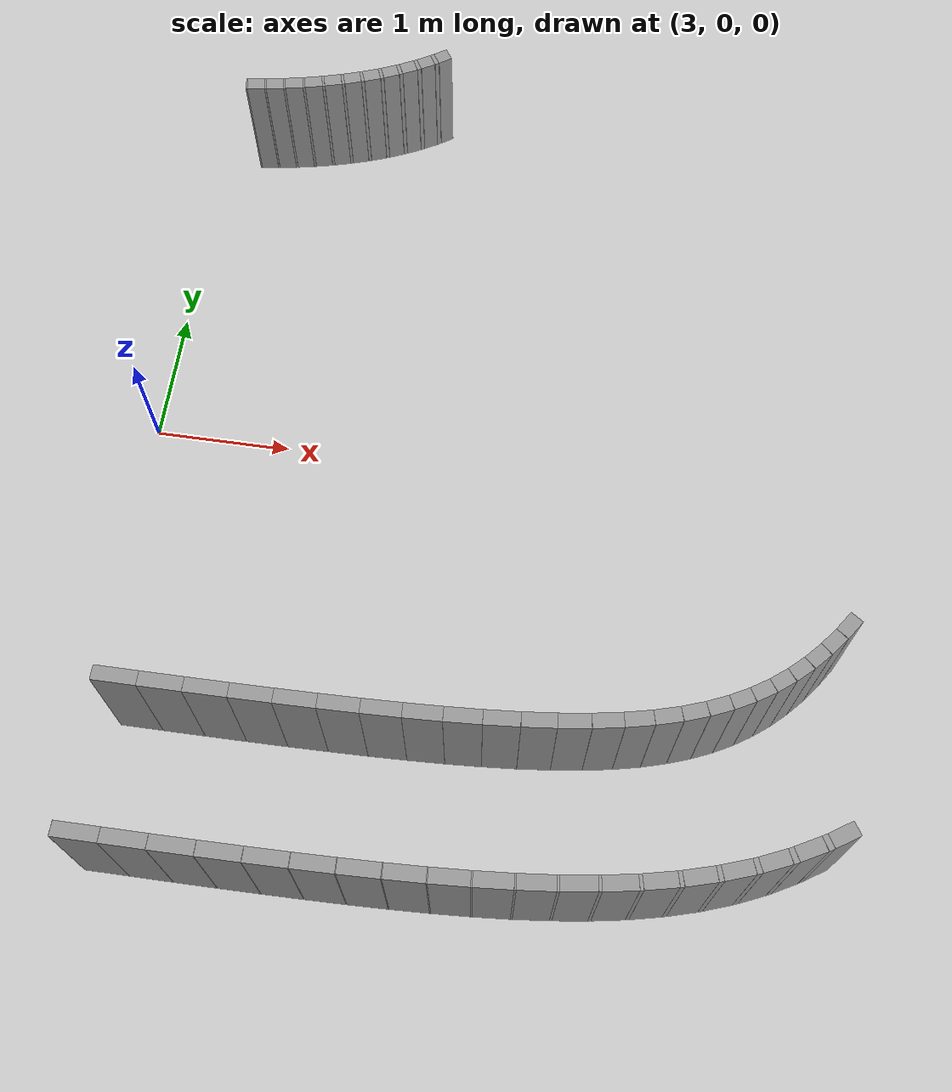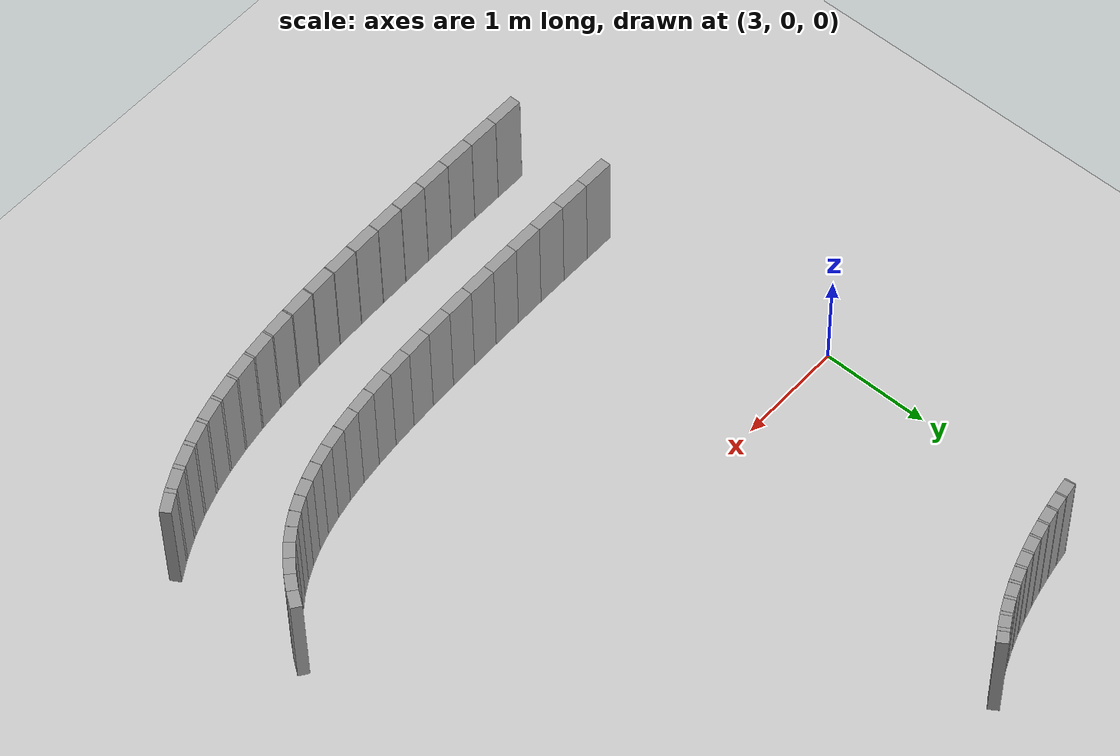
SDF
<sdf version="1.6">
 <world name="default">
  <include><uri>model://ground_plane</uri></include>
  <include><uri>model://sun</uri></include>
  <model name="wall_132_outward">
   <static>true</static>
   <link name="link">
    <collision name="collision">
     <geometry><box><size>0.3003830584958823 0.1 1.0</size></box></geometry>
    </collision>
    <visual name="visual">
     <geometry><box><size>0.3003830584958823 0.1 1.0</size></box></geometry>
     <material>
      <script><uri>file://media/materials/scripts/gazebo.material</uri><name>Gazebo/Gray</name></script>
     </material>
    </visual>
   </link>
   <pose>3.4008561335696834 -2.216769742908646 0.5 0 0 -0.002341130472355524</pose>
  </model>
  <model name="wall_133_outward">
   <static>true</static>
   <link name="link">
    <collision name="collision">
     <geometry><box><size>0.2966033449777525 0.1 1.0</size></box></geometry>
    </collision>
    <visual name="visual">
     <geometry><box><size>0.2966033449777525 0.1 1.0</size></box></geometry>
     <material>
      <script><uri>file://media/materials/scripts/gazebo.material</uri><name>Gazebo/Gray</name></script>
     </material>
    </visual>
   </link>
   <pose>3.6993489229550724 -2.21710634809853 0.5 0 0 0.00010122916690713846</pose>
  </model>
  <model name="wall_134_outward">
   <static>true</static>
   <link name="link">
    <collision name="collision">
     <geometry><box><size>0.29238200993950597 0.1 1.0</size></box></geometry>
    </collision>
    <visual name="visual">
     <geometry><box><size>0.29238200993950597 0.1 1.0</size></box></geometry>
     <material>
      <script><uri>file://media/materials/scripts/gazebo.material</uri><name>Gazebo/Gray</name></script>
     </material>
    </visual>
   </link>
   <pose>3.9938408787812865 -2.216632239085267 0.5 0 0 0.0031403937146114373</pose>
  </model>
  <model name="wall_135_outward">
   <static>true</static>
   <link name="link">
    <collision name="collision">
     <geometry><box><size>0.28759851907610473 0.1 1.0</size></box></geometry>
    </collision>
    <visual name="visual">
     <geometry><box><size>0.28759851907610473 0.1 1.0</size></box></geometry>
     <material>
      <script><uri>file://media/materials/scripts/gazebo.material</uri><name>Gazebo/Gray</name></script>
     </material>
    </visual>
   </link>
   <pose>4.28382687863083 -2.2151636005713593 0.5 0 0 0.007020552482287304</pose>
  </model>
  <model name="wall_136_outward">
   <static>true</static>
   <link name="link">
    <collision name="collision">
     <geometry><box><size>0.28212309002715363 0.1 1.0</size></box></geometry>
    </collision>
    <visual name="visual">
     <geometry><box><size>0.28212309002715363 0.1 1.0</size></box></geometry>
     <material>
      <script><uri>file://media/materials/scripts/gazebo.material</uri><name>Gazebo/Gray</name></script>
     </material>
    </visual>
   </link>
   <pose>4.5686738656198695 -2.2124516003542145 0.5 0 0 0.012069197128705491</pose>
  </model>
  <model name="wall_137_outward">
   <static>true</static>
   <link name="link">
    <collision name="collision">
     <geometry><box><size>0.2758243706131458 0.1 1.0</size></box></geometry>
    </collision>
    <visual name="visual">
     <geometry><box><size>0.2758243706131458 0.1 1.0</size></box></geometry>
     <material>
      <script><uri>file://media/materials/scripts/gazebo.material</uri><name>Gazebo/Gray</name></script>
     </material>
    </visual>
   </link>
   <pose>4.8476132005579675 -2.208169850579427 0.5 0 0 0.018703509738927367</pose>
  </model>
  <model name="wall_138_outward">
   <static>true</static>
   <link name="link">
    <collision name="collision">
     <geometry><box><size>0.2685928106176442 0.1 1.0</size></box></geometry>
    </collision>
    <visual name="visual">
     <geometry><box><size>0.2685928106176442 0.1 1.0</size></box></geometry>
     <material>
      <script><uri>file://media/materials/scripts/gazebo.material</uri><name>Gazebo/Gray</name></script>
     </material>
    </visual>
   </link>
   <pose>5.119747110142365 -2.2019058145659374 0.5 0 0 0.02744084600088649</pose>
  </model>
  <model name="wall_139_outward">
   <static>true</static>
   <link name="link">
    <collision name="collision">
     <geometry><box><size>0.2603315406669322 0.1 1.0</size></box></geometry>
    </collision>
    <visual name="visual">
     <geometry><box><size>0.2603315406669322 0.1 1.0</size></box></geometry>
     <material>
      <script><uri>file://media/materials/scripts/gazebo.material</uri><name>Gazebo/Gray</name></script>
     </material>
    </visual>
   </link>
   <pose>5.384060266715352 -2.1931592071302877 0.5 0 0 0.03889762724946351</pose>
  </model>
  <model name="wall_140_outward">
   <static>true</static>
   <link name="link">
    <collision name="collision">
     <geometry><box><size>0.2509880227683084 0.1 1.0</size></box></geometry>
    </collision>
    <visual name="visual">
     <geometry><box><size>0.2509880227683084 0.1 1.0</size></box></geometry>
     <material>
      <script><uri>file://media/materials/scripts/gazebo.material</uri><name>Gazebo/Gray</name></script>
     </material>
    </visual>
   </link>
   <pose>5.639439827797187 -2.1813455448037233 0.5 0 0 0.053827755555634814</pose>
  </model>
  <model name="wall_141_outward">
   <static>true</static>
   <link name="link">
    <collision name="collision">
     <geometry><box><size>0.2405701083804975 0.1 1.0</size></box></geometry>
    </collision>
    <visual name="visual">
     <geometry><box><size>0.2405701083804975 0.1 1.0</size></box></geometry>
     <material>
      <script><uri>file://media/materials/scripts/gazebo.material</uri><name>Gazebo/Gray</name></script>
     </material>
    </visual>
   </link>
   <pose>5.884716099679677 -2.165811501431465 0.5 0 0 0.07307695426481567</pose>
  </model>
  <model name="wall_142_outward">
   <static>true</static>
   <link name="link">
    <collision name="collision">
     <geometry><box><size>0.2291511320796465 0.1 1.0</size></box></geometry>
    </collision>
    <visual name="visual">
     <geometry><box><size>0.2291511320796465 0.1 1.0</size></box></geometry>
     <material>
      <script><uri>file://media/materials/scripts/gazebo.material</uri><name>Gazebo/Gray</name></script>
     </material>
    </visual>
   </link>
   <pose>6.11871048022329 -2.145865138694485 0.5 0 0 0.09759376316164019</pose>
  </model>
  <model name="wall_143_outward">
   <static>true</static>
   <link name="link">
    <collision name="collision">
     <geometry><box><size>0.2169049978945903 0.1 1.0</size></box></geometry>
    </collision>
    <visual name="visual">
     <geometry><box><size>0.2169049978945903 0.1 1.0</size></box></geometry>
     <material>
      <script><uri>file://media/materials/scripts/gazebo.material</uri><name>Gazebo/Gray</name></script>
     </material>
    </visual>
   </link>
   <pose>6.340300856982852 -2.120816239822476 0.5 0 0 0.1283787198196812</pose>
  </model>
  <model name="wall_144_outward">
   <static>true</static>
   <link name="link">
    <collision name="collision">
     <geometry><box><size>0.2041206651933666 0.1 1.0</size></box></geometry>
    </collision>
    <visual name="visual">
     <geometry><box><size>0.2041206651933666 0.1 1.0</size></box></geometry>
     <material>
      <script><uri>file://media/materials/scripts/gazebo.material</uri><name>Gazebo/Gray</name></script>
     </material>
    </visual>
   </link>
   <pose>6.54851150929955 -2.09002698567358 0.5 0 0 0.16639899769269756</pose>
  </model>
  <model name="wall_145_outward">
   <static>true</static>
   <link name="link">
    <collision name="collision">
     <geometry><box><size>0.19121238748569638 0.1 1.0</size></box></geometry>
    </collision>
    <visual name="visual">
     <geometry><box><size>0.19121238748569638 0.1 1.0</size></box></geometry>
     <material>
      <script><uri>file://media/materials/scripts/gazebo.material</uri><name>Gazebo/Gray</name></script>
     </material>
    </visual>
   </link>
   <pose>6.7426183248866645 -2.0529610008047325 0.5 0 0 0.21247593791916072</pose>
  </model>
  <model name="wall_146_outward">
   <static>true</static>
   <link name="link">
    <collision name="collision">
     <geometry><box><size>0.17872390431773244 0.1 1.0</size></box></geometry>
    </collision>
    <visual name="visual">
     <geometry><box><size>0.17872390431773244 0.1 1.0</size></box></geometry>
     <material>
      <script><uri>file://media/materials/scripts/gazebo.material</uri><name>Gazebo/Gray</name></script>
     </material>
    </visual>
   </link>
   <pose>6.922267460812252 -2.009212777377275 0.5 0 0 0.26711080698095785</pose>
  </model>
  <model name="wall_147_outward">
   <static>true</static>
   <link name="link">
    <collision name="collision">
     <geometry><box><size>0.16731556900374545 0.1 1.0</size></box></geometry>
    </collision>
    <visual name="visual">
     <geometry><box><size>0.16731556900374545 0.1 1.0</size></box></geometry>
     <material>
      <script><uri>file://media/materials/scripts/gazebo.material</uri><name>Gazebo/Gray</name></script>
     </material>
    </visual>
   </link>
   <pose>7.087596131763334 -1.958493734245705 0.5 0 0 0.33029831655572733</pose>
  </model>
  <model name="wall_148_outward">
   <static>true</static>
   <link name="link">
    <collision name="collision">
     <geometry><box><size>0.15767994164092786 0.1 1.0</size></box></geometry>
    </collision>
    <visual name="visual">
     <geometry><box><size>0.15767994164092786 0.1 1.0</size></box></geometry>
     <material>
      <script><uri>file://media/materials/scripts/gazebo.material</uri><name>Gazebo/Gray</name></script>
     </material>
    </visual>
   </link>
   <pose>7.239308497756994 -1.900565772927406 0.5 0 0 0.40129345043062525</pose>
  </model>
  <model name="wall_149_outward">
   <static>true</static>
   <link name="link">
    <collision name="collision">
     <geometry><box><size>0.1504219524128529 0.1 1.0</size></box></geometry>
    </collision>
    <visual name="visual">
     <geometry><box><size>0.1504219524128529 0.1 1.0</size></box></geometry>
     <material>
      <script><uri>file://media/materials/scripts/gazebo.material</uri><name>Gazebo/Gray</name></script>
     </material>
    </visual>
   </link>
   <pose>7.378645646839857 -1.8351330709254898 0.5 0 0 0.4785945941113874</pose>
  </model>
  <model name="wall_150_outward">
   <static>true</static>
   <link name="link">
    <collision name="collision">
     <geometry><box><size>0.14593976442525844 0.1 1.0</size></box></geometry>
    </collision>
    <visual name="visual">
     <geometry><box><size>0.14593976442525844 0.1 1.0</size></box></geometry>
     <material>
      <script><uri>file://media/materials/scripts/gazebo.material</uri><name>Gazebo/Gray</name></script>
     </material>
    </visual>
   </link>
   <pose>7.507229793416954 -1.7617346746248512 0.5 0 0 0.5600118203813078</pose>
  </model>
  <model name="wall_151_outward">
   <static>true</static>
   <link name="link">
    <collision name="collision">
     <geometry><box><size>0.14430631198835697 0.1 1.0</size></box></geometry>
    </collision>
    <visual name="visual">
     <geometry><box><size>0.14430631198835697 0.1 1.0</size></box></geometry>
     <material>
      <script><uri>file://media/materials/scripts/gazebo.material</uri><name>Gazebo/Gray</name></script>
     </material>
    </visual>
   </link>
   <pose>7.626798886368884 -1.679712033712637 0.5 0 0 0.642971476886444</pose>
  </model>
  <model name="wall_152_outward">
   <static>true</static>
   <link name="link">
    <collision name="collision">
     <geometry><box><size>0.14525679130613325 0.1 1.0</size></box></geometry>
    </collision>
    <visual name="visual">
     <geometry><box><size>0.14525679130613325 0.1 1.0</size></box></geometry>
     <material>
      <script><uri>file://media/materials/scripts/gazebo.material</uri><name>Gazebo/Gray</name></script>
     </material>
    </visual>
   </link>
   <pose>7.738909226837016 -1.5882911700535436 0.5 0 0 0.7249463707849249</pose>
  </model>
  <model name="wall_153_outward">
   <static>true</static>
   <link name="link">
    <collision name="collision">
     <geometry><box><size>0.14825762714398188 0.1 1.0</size></box></geometry>
    </collision>
    <visual name="visual">
     <geometry><box><size>0.14825762714398188 0.1 1.0</size></box></geometry>
     <material>
      <script><uri>file://media/materials/scripts/gazebo.material</uri><name>Gazebo/Gray</name></script>
     </material>
    </visual>
   </link>
   <pose>7.844715026364122 -1.4867564000456548 0.5 0 0 0.8038504586439579</pose>
  </model>
  <model name="wall_154_outward">
   <static>true</static>
   <link name="link">
    <collision name="collision">
     <geometry><box><size>0.1526488804750223 0.1 1.0</size></box></geometry>
    </collision>
    <visual name="visual">
     <geometry><box><size>0.1526488804750223 0.1 1.0</size></box></geometry>
     <material>
      <script><uri>file://media/materials/scripts/gazebo.material</uri><name>Gazebo/Gray</name></script>
     </material>
    </visual>
   </link>
   <pose>7.944887191002919 -1.3746386509723814 0.5 0 0 0.8782809093574084</pose>
  </model>
  <model name="wall_155_outward">
   <static>true</static>
   <link name="link">
    <collision name="collision">
     <geometry><box><size>0.15778710465075552 0.1 1.0</size></box></geometry>
    </collision>
    <visual name="visual">
     <geometry><box><size>0.15778710465075552 0.1 1.0</size></box></geometry>
     <material>
      <script><uri>file://media/materials/scripts/gazebo.material</uri><name>Gazebo/Gray</name></script>
     </material>
    </visual>
   </link>
   <pose>8.039667069564452 -1.251835860756073 0.5 0 0 0.9475424033333922</pose>
  </model>
  <model name="wall_281_outward">
   <static>true</static>
   <link name="link">
    <collision name="collision">
     <geometry><box><size>0.10860867387679511 0.1 1.0</size></box></geometry>
    </collision>
    <visual name="visual">
     <geometry><box><size>0.10860867387679511 0.1 1.0</size></box></geometry>
     <material>
      <script><uri>file://media/materials/scripts/gazebo.material</uri><name>Gazebo/Gray</name></script>
     </material>
    </visual>
   </link>
   <pose>4.752678535591696 3.0944658722669502 0.5 0 0 -2.5556931547748083</pose>
  </model>
  <model name="wall_282_outward">
   <static>true</static>
   <link name="link">
    <collision name="collision">
     <geometry><box><size>0.033583290756874454 0.1 1.0</size></box></geometry>
    </collision>
    <visual name="visual">
     <geometry><box><size>0.033583290756874454 0.1 1.0</size></box></geometry>
     <material>
      <script><uri>file://media/materials/scripts/gazebo.material</uri><name>Gazebo/Gray</name></script>
     </material>
    </visual>
   </link>
   <pose>4.693136367125312 3.0556285170932567 0.5 0 0 -2.589282761486371</pose>
  </model>
  <model name="wall_283_outward">
   <static>true</static>
   <link name="link">
    <collision name="collision">
     <geometry><box><size>0.11334935981841734 0.1 1.0</size></box></geometry>
    </collision>
    <visual name="visual">
     <geometry><box><size>0.11334935981841734 0.1 1.0</size></box></geometry>
     <material>
      <script><uri>file://media/materials/scripts/gazebo.material</uri><name>Gazebo/Gray</name></script>
     </material>
    </visual>
   </link>
   <pose>4.629622017881552 3.018721136129818 0.5 0 0 -2.622872368197955</pose>
  </model>
  <model name="wall_284_outward">
   <static>true</static>
   <link name="link">
    <collision name="collision">
     <geometry><box><size>0.03095622613777977 0.1 1.0</size></box></geometry>
    </collision>
    <visual name="visual">
     <geometry><box><size>0.03095622613777977 0.1 1.0</size></box></geometry>
     <material>
      <script><uri>file://media/materials/scripts/gazebo.material</uri><name>Gazebo/Gray</name></script>
     </material>
    </visual>
   </link>
   <pose>4.566729509538741 2.9833697980952514 0.5 0 0 -2.6538335406320375</pose>
  </model>
  <model name="wall_285_outward">
   <static>true</static>
   <link name="link">
    <collision name="collision">
     <geometry><box><size>0.11805103080360965 0.1 1.0</size></box></geometry>
    </collision>
    <visual name="visual">
     <geometry><box><size>0.11805103080360965 0.1 1.0</size></box></geometry>
     <material>
      <script><uri>file://media/materials/scripts/gazebo.material</uri><name>Gazebo/Gray</name></script>
     </material>
    </visual>
   </link>
   <pose>4.500082775749904 2.9500812441250868 0.5 0 0 -2.684794713066111</pose>
  </model>
  <model name="wall_286_outward">
   <static>true</static>
   <link name="link">
    <collision name="collision">
     <geometry><box><size>0.028269231743902785 0.1 1.0</size></box></geometry>
    </collision>
    <visual name="visual">
     <geometry><box><size>0.028269231743902785 0.1 1.0</size></box></geometry>
     <material>
      <script><uri>file://media/materials/scripts/gazebo.material</uri><name>Gazebo/Gray</name></script>
     </material>
    </visual>
   </link>
   <pose>4.4342526196991825 2.918173118258961 0.5 0 0 -2.7130677113882578</pose>
  </model>
  <model name="wall_287_outward">
   <static>true</static>
   <link name="link">
    <collision name="collision">
     <geometry><box><size>0.12252169627060434 0.1 1.0</size></box></geometry>
    </collision>
    <visual name="visual">
     <geometry><box><size>0.12252169627060434 0.1 1.0</size></box></geometry>
     <material>
      <script><uri>file://media/materials/scripts/gazebo.material</uri><name>Gazebo/Gray</name></script>
     </material>
    </visual>
   </link>
   <pose>4.3649770949829 2.8884294542701117 0.5 0 0 -2.74134070971041</pose>
  </model>
  <model name="wall_288_outward">
   <static>true</static>
   <link name="link">
    <collision name="collision">
     <geometry><box><size>0.0256197042916161 0.1 1.0</size></box></geometry>
    </collision>
    <visual name="visual">
     <geometry><box><size>0.0256197042916161 0.1 1.0</size></box></geometry>
     <material>
      <script><uri>file://media/materials/scripts/gazebo.material</uri><name>Gazebo/Gray</name></script>
     </material>
    </visual>
   </link>
   <pose>4.296636726608076 2.8598716615473645 0.5 0 0 -2.7669632174945007</pose>
  </model>
  <model name="wall_289_outward">
   <static>true</static>
   <link name="link">
    <collision name="collision">
     <geometry><box><size>0.12657483410761208 0.1 1.0</size></box></geometry>
    </collision>
    <visual name="visual">
     <geometry><box><size>0.12657483410761208 0.1 1.0</size></box></geometry>
     <material>
      <script><uri>file://media/materials/scripts/gazebo.material</uri><name>Gazebo/Gray</name></script>
     </material>
    </visual>
   </link>
   <pose>4.225243329628526 2.833542114649391 0.5 0 0 -2.792585725278594</pose>
  </model>
  <model name="wall_290_outward">
   <static>true</static>
   <link name="link">
    <collision name="collision">
     <geometry><box><size>0.02306725927045801 0.1 1.0</size></box></geometry>
    </collision>
    <visual name="visual">
     <geometry><box><size>0.02306725927045801 0.1 1.0</size></box></geometry>
     <material>
      <script><uri>file://media/materials/scripts/gazebo.material</uri><name>Gazebo/Gray</name></script>
     </material>
    </visual>
   </link>
   <pose>4.154844940904798 2.8082070116396762 0.5 0 0 -2.8156550307145216</pose>
  </model>
  <model name="wall_291_outward">
   <static>true</static>
   <link name="link">
    <collision name="collision">
     <geometry><box><size>0.13003181577984943 0.1 1.0</size></box></geometry>
    </collision>
    <visual name="visual">
     <geometry><box><size>0.13003181577984943 0.1 1.0</size></box></geometry>
     <material>
      <script><uri>file://media/materials/scripts/gazebo.material</uri><name>Gazebo/Gray</name></script>
     </material>
    </visual>
   </link>
   <pose>4.081861842981954 2.7851223835191874 0.5 0 0 -2.8387243361504417</pose>
  </model>
  <model name="wall_292_outward">
   <static>true</static>
   <link name="link">
    <collision name="collision">
     <geometry><box><size>0.020635787454358283 0.1 1.0</size></box></geometry>
    </collision>
    <visual name="visual">
     <geometry><box><size>0.020635787454358283 0.1 1.0</size></box></geometry>
     <material>
      <script><uri>file://media/materials/scripts/gazebo.material</uri><name>Gazebo/Gray</name></script>
     </material>
    </visual>
   </link>
   <pose>4.009895458162845 2.7628572666424027 0.5 0 0 -2.8593615884614416</pose>
  </model>
  <model name="wall_293_outward">
   <static>true</static>
   <link name="link">
    <collision name="collision">
     <geometry><box><size>0.13273129198517697 0.1 1.0</size></box></geometry>
    </collision>
    <visual name="visual">
     <geometry><box><size>0.13273129198517697 0.1 1.0</size></box></geometry>
     <material>
      <script><uri>file://media/materials/scripts/gazebo.material</uri><name>Gazebo/Gray</name></script>
     </material>
    </visual>
   </link>
   <pose>3.935877955449542 2.74282022762936 0.5 0 0 -2.8799988407724317</pose>
  </model>
  <model name="wall_294_outward">
   <static>true</static>
   <link name="link">
    <collision name="collision">
     <geometry><box><size>0.01833709464321489 0.1 1.0</size></box></geometry>
    </collision>
    <visual name="visual">
     <geometry><box><size>0.01833709464321489 0.1 1.0</size></box></geometry>
     <material>
      <script><uri>file://media/materials/scripts/gazebo.material</uri><name>Gazebo/Gray</name></script>
     </material>
    </visual>
   </link>
   <pose>3.8628715186730758 2.723448342538667 0.5 0 0 -2.898336963209586</pose>
  </model>
  <model name="wall_295_outward">
   <static>true</static>
   <link name="link">
    <collision name="collision">
     <geometry><box><size>0.13452823630365707 0.1 1.0</size></box></geometry>
    </collision>
    <visual name="visual">
     <geometry><box><size>0.13452823630365707 0.1 1.0</size></box></geometry>
     <material>
      <script><uri>file://media/materials/scripts/gazebo.material</uri><name>Gazebo/Gray</name></script>
     </material>
    </visual>
   </link>
   <pose>3.788403000251959 2.706238324278117 0.5 0 0 -2.916675085646735</pose>
  </model>
  <model name="wall_296_outward">
   <static>true</static>
   <link name="link">
    <collision name="collision">
     <geometry><box><size>0.016178261108947534 0.1 1.0</size></box></geometry>
    </collision>
    <visual name="visual">
     <geometry><box><size>0.016178261108947534 0.1 1.0</size></box></geometry>
     <material>
      <script><uri>file://media/materials/scripts/gazebo.material</uri><name>Gazebo/Gray</name></script>
     </material>
    </visual>
   </link>
   <pose>3.7149195569141713 2.6895603980367797 0.5 0 0 -2.9328540525780573</pose>
  </model>
  <model name="wall_297_outward">
   <static>true</static>
   <link name="link">
    <collision name="collision">
     <geometry><box><size>0.1352980975713387 0.1 1.0</size></box></geometry>
    </collision>
    <visual name="visual">
     <geometry><box><size>0.1352980975713387 0.1 1.0</size></box></geometry>
     <material>
      <script><uri>file://media/materials/scripts/gazebo.material</uri><name>Gazebo/Gray</name></script>
     </material>
    </visual>
   </link>
   <pose>3.6406072837873698 2.674937996204403 0.5 0 0 -2.949033019509399</pose>
  </model>
  <model name="wall_298_outward">
   <static>true</static>
   <link name="link">
    <collision name="collision">
     <geometry><box><size>0.014159286005706156 0.1 1.0</size></box></geometry>
    </collision>
    <visual name="visual">
     <geometry><box><size>0.014159286005706156 0.1 1.0</size></box></geometry>
     <material>
      <script><uri>file://media/materials/scripts/gazebo.material</uri><name>Gazebo/Gray</name></script>
     </material>
    </visual>
   </link>
   <pose>3.5672412698662646 2.6607355543632103 0.5 0 0 -2.963192778679424</pose>
  </model>
  <model name="wall_299_outward">
   <static>true</static>
   <link name="link">
    <collision name="collision">
     <geometry><box><size>0.1349333020725645 0.1 1.0</size></box></geometry>
    </collision>
    <visual name="visual">
     <geometry><box><size>0.1349333020725645 0.1 1.0</size></box></geometry>
     <material>
      <script><uri>file://media/materials/scripts/gazebo.material</uri><name>Gazebo/Gray</name></script>
     </material>
    </visual>
   </link>
   <pose>3.493715244124988 2.6484482548606914 0.5 0 0 -2.9773525378494696</pose>
  </model>
  <model name="wall_300_outward">
   <static>true</static>
   <link name="link">
    <collision name="collision">
     <geometry><box><size>0.01227946826668087 0.1 1.0</size></box></geometry>
    </collision>
    <visual name="visual">
     <geometry><box><size>0.01227946826668087 0.1 1.0</size></box></geometry>
     <material>
      <script><uri>file://media/materials/scripts/gazebo.material</uri><name>Gazebo/Gray</name></script>
     </material>
    </visual>
   </link>
   <pose>3.421087518442446 2.636487864475721 0.5 0 0 -2.989632314731082</pose>
  </model>
  <model name="wall_301_outward">
   <static>true</static>
   <link name="link">
    <collision name="collision">
     <geometry><box><size>0.13334605998814075 0.1 1.0</size></box></geometry>
    </collision>
    <visual name="visual">
     <geometry><box><size>0.13334605998814075 0.1 1.0</size></box></geometry>
     <material>
      <script><uri>file://media/materials/scripts/gazebo.material</uri><name>Gazebo/Gray</name></script>
     </material>
    </visual>
   </link>
   <pose>3.3489948677770616 2.626275782763299 0.5 0 0 -3.0019120916126503</pose>
  </model>
  <model name="wall_302_outward">
   <static>true</static>
   <link name="link">
    <collision name="collision">
     <geometry><box><size>0.010543450045767115 0.1 1.0</size></box></geometry>
    </collision>
    <visual name="visual">
     <geometry><box><size>0.010543450045767115 0.1 1.0</size></box></geometry>
     <material>
      <script><uri>file://media/materials/scripts/gazebo.material</uri><name>Gazebo/Gray</name></script>
     </material>
    </visual>
   </link>
   <pose>3.277743368826779 2.6163142267377264 0.5 0 0 -3.012455737010776</pose>
  </model>
  <model name="wall_252_inward">
   <static>true</static>
   <link name="link">
    <collision name="collision">
     <geometry><box><size>0.0010168729272047382 0.1 1.0</size></box></geometry>
    </collision>
    <visual name="visual">
     <geometry><box><size>0.0010168729272047382 0.1 1.0</size></box></geometry>
     <material>
      <script><uri>file://media/materials/scripts/gazebo.material</uri><name>Gazebo/Gray</name></script>
     </material>
    </visual>
   </link>
   <pose>3.2473070186494475 -3.2164124871754582 0.5 0 0 -0.0033580035748494133</pose>
  </model>
  <model name="wall_253_inward">
   <static>true</static>
   <link name="link">
    <collision name="collision">
     <geometry><box><size>0.30150208543563645 0.1 1.0</size></box></geometry>
    </collision>
    <visual name="visual">
     <geometry><box><size>0.30150208543563645 0.1 1.0</size></box></geometry>
     <material>
      <script><uri>file://media/materials/scripts/gazebo.material</uri><name>Gazebo/Gray</name></script>
     </material>
    </visual>
   </link>
   <pose>3.3985660818393635 -3.2167671220411647 0.5 0 0 -0.0023411304723545334</pose>
  </model>
  <model name="wall_254_inward">
   <static>true</static>
   <link name="link">
    <collision name="collision">
     <geometry><box><size>0.001221179516110513 0.1 1.0</size></box></geometry>
    </collision>
    <visual name="visual">
     <geometry><box><size>0.001221179516110513 0.1 1.0</size></box></geometry>
     <material>
      <script><uri>file://media/materials/scripts/gazebo.material</uri><name>Gazebo/Gray</name></script>
     </material>
    </visual>
   </link>
   <pose>3.549927300807414 -3.2171207334088723 0.5 0 0 -0.0011199506526604318</pose>
  </model>
  <model name="wall_255_inward">
   <static>true</static>
   <link name="link">
    <collision name="collision">
     <geometry><box><size>0.2979737269128245 0.1 1.0</size></box></geometry>
    </collision>
    <visual name="visual">
     <geometry><box><size>0.2979737269128245 0.1 1.0</size></box></geometry>
     <material>
      <script><uri>file://media/materials/scripts/gazebo.material</uri><name>Gazebo/Gray</name></script>
     </material>
    </visual>
   </link>
   <pose>3.6995247528755932 -3.217106335423085 0.5 0 0 0.00010122916690712177</pose>
  </model>
  <model name="wall_256_inward">
   <static>true</static>
   <link name="link">
    <collision name="collision">
     <geometry><box><size>0.0015195816890334268 0.1 1.0</size></box></geometry>
    </collision>
    <visual name="visual">
     <geometry><box><size>0.0015195816890334268 0.1 1.0</size></box></geometry>
     <material>
      <script><uri>file://media/materials/scripts/gazebo.material</uri><name>Gazebo/Gray</name></script>
     </material>
    </visual>
   </link>
   <pose>3.849271405415166 -3.217090022129889 0.5 0 0 0.0016208114408410807</pose>
  </model>
  <model name="wall_257_inward">
   <static>true</static>
   <link name="link">
    <collision name="collision">
     <geometry><box><size>0.29411184257030837 0.1 1.0</size></box></geometry>
    </collision>
    <visual name="visual">
     <geometry><box><size>0.29411184257030837 0.1 1.0</size></box></geometry>
     <material>
      <script><uri>file://media/materials/scripts/gazebo.material</uri><name>Gazebo/Gray</name></script>
     </material>
    </visual>
   </link>
   <pose>3.9970863914093444 -3.216626977920907 0.5 0 0 0.0031403937146116325</pose>
  </model>
  <model name="wall_258_inward">
   <static>true</static>
   <link name="link">
    <collision name="collision">
     <geometry><box><size>0.0019400781667911328 0.1 1.0</size></box></geometry>
    </collision>
    <visual name="visual">
     <geometry><box><size>0.0019400781667911328 0.1 1.0</size></box></geometry>
     <material>
      <script><uri>file://media/materials/scripts/gazebo.material</uri><name>Gazebo/Gray</name></script>
     </material>
    </visual>
   </link>
   <pose>4.145111614121485 -3.2161602369528124 0.5 0 0 0.005080473098350139</pose>
  </model>
  <model name="wall_259_inward">
   <static>true</static>
   <link name="link">
    <collision name="collision">
     <geometry><box><size>0.28983072382758474 0.1 1.0</size></box></geometry>
    </collision>
    <visual name="visual">
     <geometry><box><size>0.28983072382758474 0.1 1.0</size></box></geometry>
     <material>
      <script><uri>file://media/materials/scripts/gazebo.material</uri><name>Gazebo/Gray</name></script>
     </material>
    </visual>
   </link>
   <pose>4.290993431308863 -3.215137931170233 0.5 0 0 0.007020552482286147</pose>
  </model>
  <model name="wall_260_inward">
   <static>true</static>
   <link name="link">
    <collision name="collision">
     <geometry><box><size>0.002524319642295267 0.1 1.0</size></box></geometry>
    </collision>
    <visual name="visual">
     <geometry><box><size>0.002524319642295267 0.1 1.0</size></box></geometry>
     <material>
      <script><uri>file://media/materials/scripts/gazebo.material</uri><name>Gazebo/Gray</name></script>
     </material>
    </visual>
   </link>
   <pose>4.437167324259036 -3.2141085066493664 0.5 0 0 0.009544874805428413</pose>
  </model>
  <model name="wall_261_inward">
   <static>true</static>
   <link name="link">
    <collision name="collision">
     <geometry><box><size>0.28504383810557654 0.1 1.0</size></box></geometry>
    </collision>
    <visual name="visual">
     <geometry><box><size>0.28504383810557654 0.1 1.0</size></box></geometry>
     <material>
      <script><uri>file://media/materials/scripts/gazebo.material</uri><name>Gazebo/Gray</name></script>
     </material>
    </visual>
   </link>
   <pose>4.58094096550043 -3.2123763762987867 0.5 0 0 0.012069197128706436</pose>
  </model>
  <model name="wall_262_inward">
   <static>true</static>
   <link name="link">
    <collision name="collision">
     <geometry><box><size>0.003317150221711105 0.1 1.0</size></box></geometry>
    </collision>
    <visual name="visual">
     <geometry><box><size>0.003317150221711105 0.1 1.0</size></box></geometry>
     <material>
      <script><uri>file://media/materials/scripts/gazebo.material</uri><name>Gazebo/Gray</name></script>
     </material>
    </visual>
   </link>
   <pose>4.725110883203843 -3.2106307745068063 0.5 0 0 0.0153863534339271</pose>
  </model>
  <model name="wall_263_inward">
   <static>true</static>
   <link name="link">
    <collision name="collision">
     <geometry><box><size>0.27966730281101504 0.1 1.0</size></box></geometry>
    </collision>
    <visual name="visual">
     <geometry><box><size>0.27966730281101504 0.1 1.0</size></box></geometry>
     <material>
      <script><uri>file://media/materials/scripts/gazebo.material</uri><name>Gazebo/Gray</name></script>
     </material>
    </visual>
   </link>
   <pose>4.866578455718427 -3.2079900285132252 0.5 0 0 0.018703509738927464</pose>
  </model>
  <model name="wall_264_inward">
   <static>true</static>
   <link name="link">
    <collision name="collision">
     <geometry><box><size>0.00436865423479724 0.1 1.0</size></box></geometry>
    </collision>
    <visual name="visual">
     <geometry><box><size>0.00436865423479724 0.1 1.0</size></box></geometry>
     <material>
      <script><uri>file://media/materials/scripts/gazebo.material</uri><name>Gazebo/Gray</name></script>
     </material>
    </visual>
   </link>
   <pose>5.008571395200506 -3.2053244082229835 0.5 0 0 0.023072177869829954</pose>
  </model>
  <model name="wall_265_inward">
   <static>true</static>
   <link name="link">
    <collision name="collision">
     <geometry><box><size>0.27364138522094744 0.1 1.0</size></box></geometry>
    </collision>
    <visual name="visual">
     <geometry><box><size>0.27364138522094744 0.1 1.0</size></box></geometry>
     <material>
      <script><uri>file://media/materials/scripts/gazebo.material</uri><name>Gazebo/Gray</name></script>
     </material>
    </visual>
   </link>
   <pose>5.147524323807366 -3.2015200111236712 0.5 0 0 0.027440846000886226</pose>
  </model>
  <model name="wall_266_inward">
   <static>true</static>
   <link name="link">
    <collision name="collision">
     <geometry><box><size>0.005728359295333514 0.1 1.0</size></box></geometry>
    </collision>
    <visual name="visual">
     <geometry><box><size>0.005728359295333514 0.1 1.0</size></box></geometry>
     <material>
      <script><uri>file://media/materials/scripts/gazebo.material</uri><name>Gazebo/Gray</name></script>
     </material>
    </visual>
   </link>
   <pose>5.287156110866816 -3.1976710215038366 0.5 0 0 0.033169236625198086</pose>
  </model>
  <model name="wall_267_inward">
   <static>true</static>
   <link name="link">
    <collision name="collision">
     <geometry><box><size>0.2669283687210813 0.1 1.0</size></box></geometry>
    </collision>
    <visual name="visual">
     <geometry><box><size>0.2669283687210813 0.1 1.0</size></box></geometry>
     <material>
      <script><uri>file://media/materials/scripts/gazebo.material</uri><name>Gazebo/Gray</name></script>
     </material>
    </visual>
   </link>
   <pose>5.423381944815774 -3.1923859052073817 0.5 0 0 0.038897627249463586</pose>
  </model>
  <model name="wall_268_inward">
   <static>true</static>
   <link name="link">
    <collision name="collision">
     <geometry><box><size>0.007464994818779216 0.1 1.0</size></box></geometry>
    </collision>
    <visual name="visual">
     <geometry><box><size>0.007464994818779216 0.1 1.0</size></box></geometry>
     <material>
      <script><uri>file://media/materials/scripts/gazebo.material</uri><name>Gazebo/Gray</name></script>
     </material>
    </visual>
   </link>
   <pose>5.560473661183233 -3.1870227875064945 0.5 0 0 0.04636269140257397</pose>
  </model>
  <model name="wall_269_inward">
   <static>true</static>
   <link name="link">
    <collision name="collision">
     <geometry><box><size>0.2595330724561535 0.1 1.0</size></box></geometry>
    </collision>
    <visual name="visual">
     <geometry><box><size>0.2595330724561535 0.1 1.0</size></box></geometry>
     <material>
      <script><uri>file://media/materials/scripts/gazebo.material</uri><name>Gazebo/Gray</name></script>
     </material>
    </visual>
   </link>
   <pose>5.693780734876242 -3.179868132097139 0.5 0 0 0.05382775555563377</pose>
  </model>
  <model name="wall_270_inward">
   <static>true</static>
   <link name="link">
    <collision name="collision">
     <geometry><box><size>0.009624450762833456 0.1 1.0</size></box></geometry>
    </collision>
    <visual name="visual">
     <geometry><box><size>0.009624450762833456 0.1 1.0</size></box></geometry>
     <material>
      <script><uri>file://media/materials/scripts/gazebo.material</uri><name>Gazebo/Gray</name></script>
     </material>
    </visual>
   </link>
   <pose>5.828161863078514 -3.172581321149404 0.5 0 0 0.0634523549102272</pose>
  </model>
  <model name="wall_271_inward">
   <static>true</static>
   <link name="link">
    <collision name="collision">
     <geometry><box><size>0.25151206590705416 0.1 1.0</size></box></geometry>
    </collision>
    <visual name="visual">
     <geometry><box><size>0.25151206590705416 0.1 1.0</size></box></geometry>
     <material>
      <script><uri>file://media/materials/scripts/gazebo.material</uri><name>Gazebo/Gray</name></script>
     </material>
    </visual>
   </link>
   <pose>5.9583848027961555 -3.163094488272983 0.5 0 0 0.07307695426481578</pose>
  </model>
  <model name="wall_272_inward">
   <static>true</static>
   <link name="link">
    <collision name="collision">
     <geometry><box><size>0.012258097442086571 0.1 1.0</size></box></geometry>
    </collision>
    <visual name="visual">
     <geometry><box><size>0.012258097442086571 0.1 1.0</size></box></geometry>
     <material>
      <script><uri>file://media/materials/scripts/gazebo.material</uri><name>Gazebo/Gray</name></script>
     </material>
    </visual>
   </link>
   <pose>6.089911947392175 -3.1533904075584873 0.5 0 0 0.08533535871319976</pose>
  </model>
  <model name="wall_273_inward">
   <static>true</static>
   <link name="link">
    <collision name="collision">
     <geometry><box><size>0.24297748837221544 0.1 1.0</size></box></geometry>
    </collision>
    <visual name="visual">
     <geometry><box><size>0.24297748837221544 0.1 1.0</size></box></geometry>
     <material>
      <script><uri>file://media/materials/scripts/gazebo.material</uri><name>Gazebo/Gray</name></script>
     </material>
    </visual>
   </link>
   <pose>6.216929334299665 -3.1410302862156696 0.5 0 0 0.09759376316164049</pose>
  </model>
  <model name="wall_274_inward">
   <static>true</static>
   <link name="link">
    <collision name="collision">
     <geometry><box><size>0.015391870517037486 0.1 1.0</size></box></geometry>
    </collision>
    <visual name="visual">
     <geometry><box><size>0.015391870517037486 0.1 1.0</size></box></geometry>
     <material>
      <script><uri>file://media/materials/scripts/gazebo.material</uri><name>Gazebo/Gray</name></script>
     </material>
    </visual>
   </link>
   <pose>6.345486839951441 -3.12832486897111 0.5 0 0 0.11298624149068506</pose>
  </model>
  <model name="wall_275_inward">
   <static>true</static>
   <link name="link">
    <collision name="collision">
     <geometry><box><size>0.23410805956742115 0.1 1.0</size></box></geometry>
    </collision>
    <visual name="visual">
     <geometry><box><size>0.23410805956742115 0.1 1.0</size></box></geometry>
     <material>
      <script><uri>file://media/materials/scripts/gazebo.material</uri><name>Gazebo/Gray</name></script>
     </material>
    </visual>
   </link>
   <pose>6.469224469224523 -3.1124711801416014 0.5 0 0 0.12837871981968058</pose>
  </model>
  <model name="wall_276_inward">
   <static>true</static>
   <link name="link">
    <collision name="collision">
     <geometry><box><size>0.019008993959476386 0.1 1.0</size></box></geometry>
    </collision>
    <visual name="visual">
     <geometry><box><size>0.019008993959476386 0.1 1.0</size></box></geometry>
     <material>
      <script><uri>file://media/materials/scripts/gazebo.material</uri><name>Gazebo/Gray</name></script>
     </material>
    </visual>
   </link>
   <pose>6.594716682113627 -3.096089386672526 0.5 0 0 0.14738885875618507</pose>
  </model>
  <model name="wall_277_inward">
   <static>true</static>
   <link name="link">
    <collision name="collision">
     <geometry><box><size>0.22514815333998342 0.1 1.0</size></box></geometry>
    </collision>
    <visual name="visual">
     <geometry><box><size>0.22514815333998342 0.1 1.0</size></box></geometry>
     <material>
      <script><uri>file://media/materials/scripts/gazebo.material</uri><name>Gazebo/Gray</name></script>
     </material>
    </visual>
   </link>
   <pose>6.715137289149814 -3.076047707872088 0.5 0 0 0.1663989976926986</pose>
  </model>
  <model name="wall_278_inward">
   <static>true</static>
   <link name="link">
    <collision name="collision">
     <geometry><box><size>0.023036432141610528 0.1 1.0</size></box></geometry>
    </collision>
    <visual name="visual">
     <geometry><box><size>0.023036432141610528 0.1 1.0</size></box></geometry>
     <material>
      <script><uri>file://media/materials/scripts/gazebo.material</uri><name>Gazebo/Gray</name></script>
     </material>
    </visual>
   </link>
   <pose>6.837468606669155 -3.0552328651777803 0.5 0 0 0.18943746780593196</pose>
  </model>
  <model name="wall_279_inward">
   <static>true</static>
   <link name="link">
    <collision name="collision">
     <geometry><box><size>0.21639577685126343 0.1 1.0</size></box></geometry>
    </collision>
    <visual name="visual">
     <geometry><box><size>0.21639577685126343 0.1 1.0</size></box></geometry>
     <material>
      <script><uri>file://media/materials/scripts/gazebo.material</uri><name>Gazebo/Gray</name></script>
     </material>
    </visual>
   </link>
   <pose>6.954545476434173 -3.030247053216428 0.5 0 0 0.21247593791916128</pose>
  </model>
  <model name="wall_280_inward">
   <static>true</static>
   <link name="link">
    <collision name="collision">
     <geometry><box><size>0.027314037087124515 0.1 1.0</size></box></geometry>
    </collision>
    <visual name="visual">
     <geometry><box><size>0.027314037087124515 0.1 1.0</size></box></geometry>
     <material>
      <script><uri>file://media/materials/scripts/gazebo.material</uri><name>Gazebo/Gray</name></script>
     </material>
    </visual>
   </link>
   <pose>7.0735764385685425 -3.004186627631033 0.5 0 0 0.2397933724500597</pose>
  </model>
  <model name="wall_281_inward">
   <static>true</static>
   <link name="link">
    <collision name="collision">
     <geometry><box><size>0.20818815562644055 0.1 1.0</size></box></geometry>
    </collision>
    <visual name="visual">
     <geometry><box><size>0.20818815562644055 0.1 1.0</size></box></geometry>
     <material>
      <script><uri>file://media/materials/scripts/gazebo.material</uri><name>Gazebo/Gray</name></script>
     </material>
    </visual>
   </link>
   <pose>7.187245332561627 -2.9734678641692254 0.5 0 0 0.26711080698095646</pose>
  </model>
  <model name="wall_282_inward">
   <static>true</static>
   <link name="link">
    <collision name="collision">
     <geometry><box><size>0.031588499084522575 0.1 1.0</size></box></geometry>
    </collision>
    <visual name="visual">
     <geometry><box><size>0.031588499084522575 0.1 1.0</size></box></geometry>
     <material>
      <script><uri>file://media/materials/scripts/gazebo.material</uri><name>Gazebo/Gray</name></script>
     </material>
    </visual>
   </link>
   <pose>7.30274283205374 -2.9413446994408883 0.5 0 0 0.2987045617683327</pose>
  </model>
  <model name="wall_283_inward">
   <static>true</static>
   <link name="link">
    <collision name="collision">
     <geometry><box><size>0.2008739466362888 0.1 1.0</size></box></geometry>
    </collision>
    <visual name="visual">
     <geometry><box><size>0.2008739466362888 0.1 1.0</size></box></geometry>
     <material>
      <script><uri>file://media/materials/scripts/gazebo.material</uri><name>Gazebo/Gray</name></script>
     </material>
    </visual>
   </link>
   <pose>7.412845605187018 -2.9041224852208867 0.5 0 0 0.33029831655572744</pose>
  </model>
  <model name="wall_284_inward">
   <static>true</static>
   <link name="link">
    <collision name="collision">
     <geometry><box><size>0.03549011246098782 0.1 1.0</size></box></geometry>
    </collision>
    <visual name="visual">
     <geometry><box><size>0.03549011246098782 0.1 1.0</size></box></geometry>
     <material>
      <script><uri>file://media/materials/scripts/gazebo.material</uri><name>Gazebo/Gray</name></script>
     </material>
    </visual>
   </link>
   <pose>7.524424553817735 -2.865200964418828 0.5 0 0 0.36579588349317566</pose>
  </model>
  <model name="wall_285_inward">
   <static>true</static>
   <link name="link">
    <collision name="collision">
     <geometry><box><size>0.19477109862289346 0.1 1.0</size></box></geometry>
    </collision>
    <visual name="visual">
     <geometry><box><size>0.19477109862289346 0.1 1.0</size></box></geometry>
     <material>
      <script><uri>file://media/materials/scripts/gazebo.material</uri><name>Gazebo/Gray</name></script>
     </material>
    </visual>
   </link>
   <pose>7.630644489422615 -2.8208139811184934 0.5 0 0 0.40129345043062686</pose>
  </model>
  <model name="wall_286_inward">
   <static>true</static>
   <link name="link">
    <collision name="collision">
     <geometry><box><size>0.03864094942541434 0.1 1.0</size></box></geometry>
    </collision>
    <visual name="visual">
     <geometry><box><size>0.03864094942541434 0.1 1.0</size></box></geometry>
     <material>
      <script><uri>file://media/materials/scripts/gazebo.material</uri><name>Gazebo/Gray</name></script>
     </material>
    </visual>
   </link>
   <pose>7.737774085066295 -2.774545899592596 0.5 0 0 0.4399440222710068</pose>
  </model>
  <model name="wall_287_inward">
   <static>true</static>
   <link name="link">
    <collision name="collision">
     <geometry><box><size>0.19012242490528494 0.1 1.0</size></box></geometry>
    </collision>
    <visual name="visual">
     <geometry><box><size>0.19012242490528494 0.1 1.0</size></box></geometry>
     <material>
      <script><uri>file://media/materials/scripts/gazebo.material</uri><name>Gazebo/Gray</name></script>
     </material>
    </visual>
   </link>
   <pose>7.839635200344017 -2.7225387826020713 0.5 0 0 0.478594594111388</pose>
  </model>
  <model name="wall_288_inward">
   <static>true</static>
   <link name="link">
    <collision name="collision">
     <geometry><box><size>0.04069737040743814 0.1 1.0</size></box></geometry>
    </collision>
    <visual name="visual">
     <geometry><box><size>0.04069737040743814 0.1 1.0</size></box></geometry>
     <material>
      <script><uri>file://media/materials/scripts/gazebo.material</uri><name>Gazebo/Gray</name></script>
     </material>
    </visual>
   </link>
   <pose>7.941681643543923 -2.6686614893523037 0.5 0 0 0.5193032072463607</pose>
  </model>
  <model name="wall_289_inward">
   <static>true</static>
   <link name="link">
    <collision name="collision">
     <geometry><box><size>0.18705713929564852 0.1 1.0</size></box></geometry>
    </collision>
    <visual name="visual">
     <geometry><box><size>0.18705713929564852 0.1 1.0</size></box></geometry>
     <material>
      <script><uri>file://media/materials/scripts/gazebo.material</uri><name>Gazebo/Gray</name></script>
     </material>
    </visual>
   </link>
   <pose>8.038589635134699 -2.6088809169636766 0.5 0 0 0.5600118203813048</pose>
  </model>
 </world>
</sdf>
